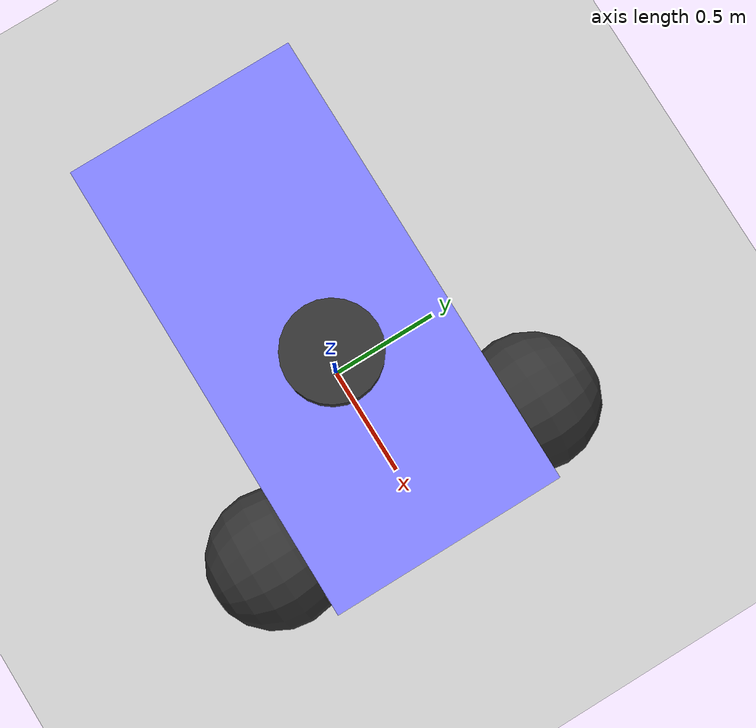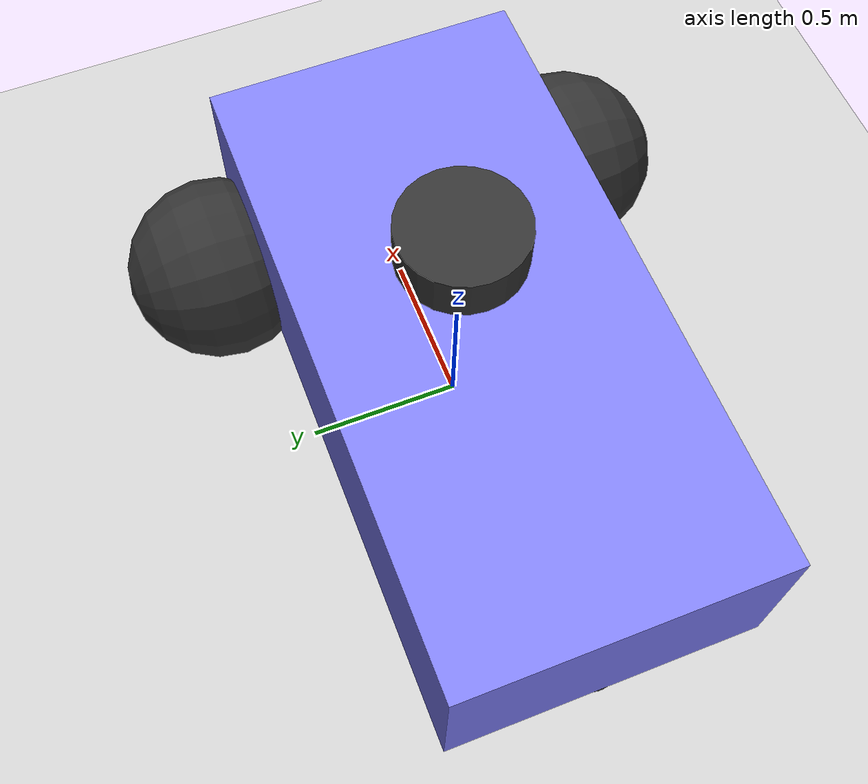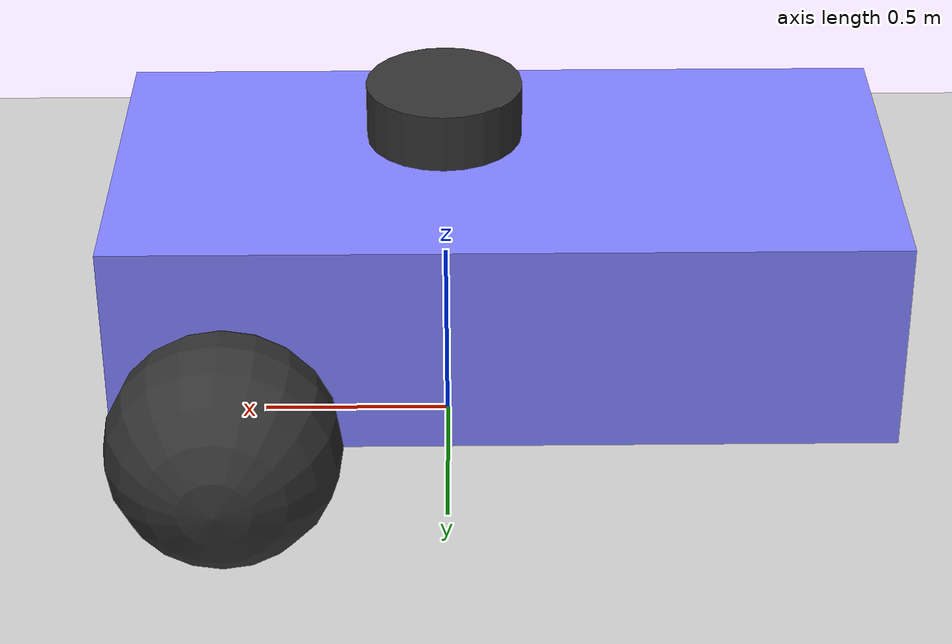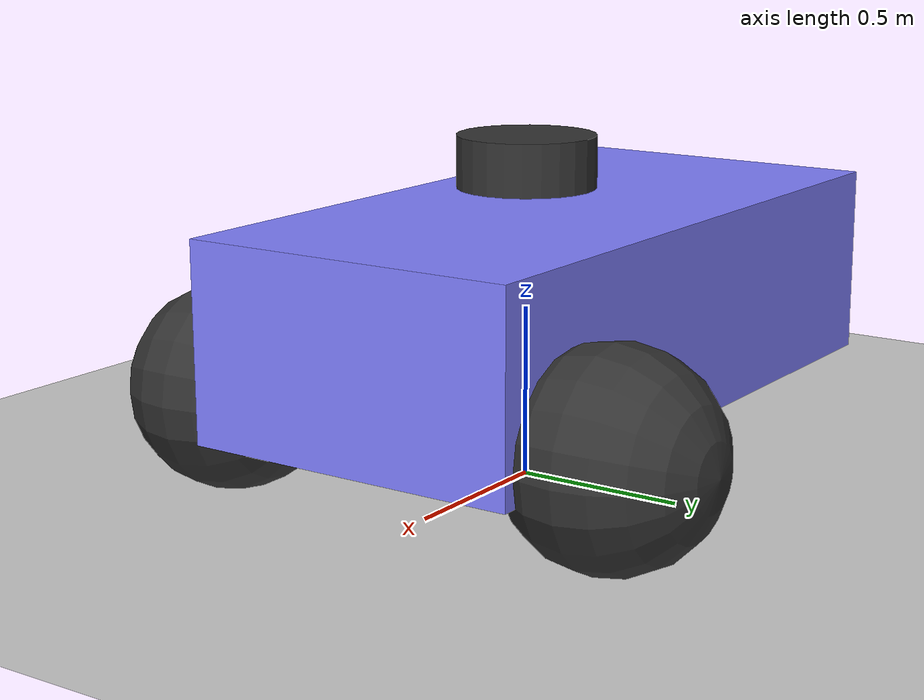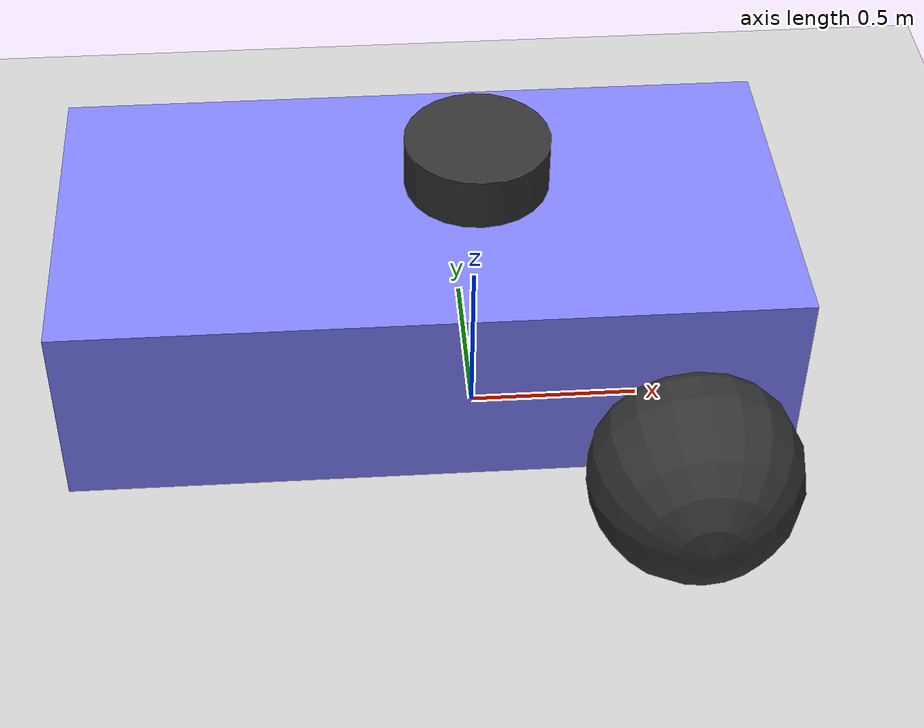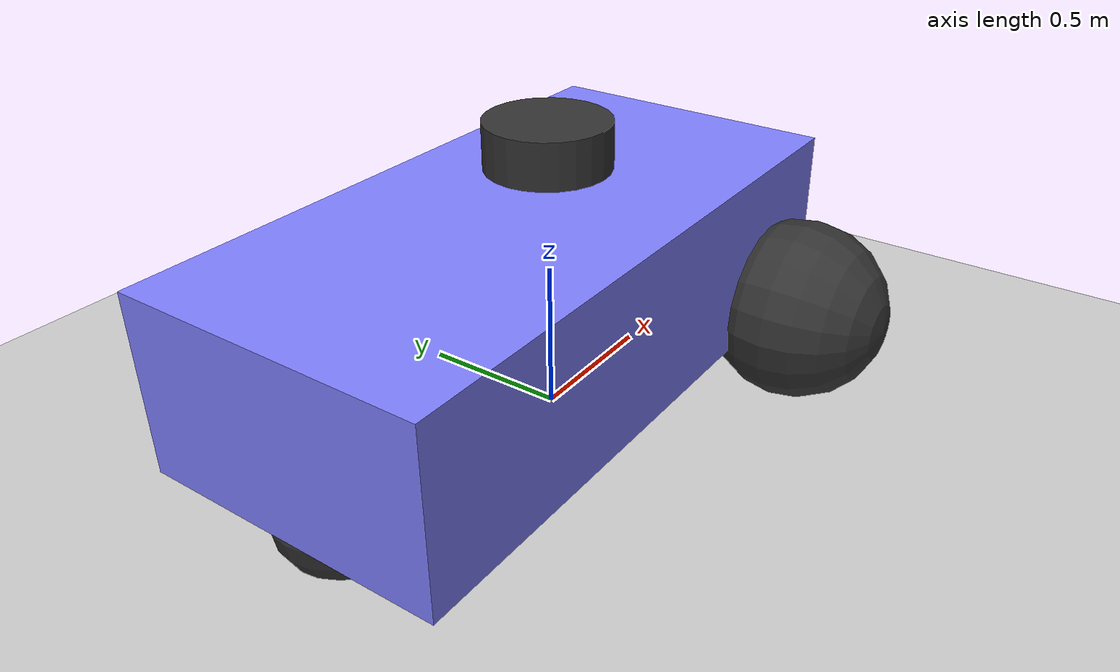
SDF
<?xml version="1.0" ?>
<sdf version="1.6">
  <world name="diff_drive">

    <physics name="1ms" type="ignored">
      <max_step_size>0.001</max_step_size>
      <real_time_factor>1.0</real_time_factor>
    </physics>
    <plugin
      filename="gz-sim-physics-system"
      name="gz::sim::systems::Physics">
    </plugin>
    <plugin
      filename="gz-sim-user-commands-system"
      name="gz::sim::systems::UserCommands">
    </plugin>
    <plugin
      filename="gz-sim-scene-broadcaster-system"
      name="gz::sim::systems::SceneBroadcaster">
    </plugin>
    <plugin
      filename="gz-sim-sensors-system"
      name="gz::sim::systems::Sensors">
      <render_engine>ogre2</render_engine>
    </plugin>
    <plugin filename="gz-sim-imu-system"
      name="gz::sim::systems::Imu">
    </plugin>

    <light type="directional" name="sun">
      <cast_shadows>true</cast_shadows>
      <pose>0 0 10 0 0 0</pose>
      <diffuse>1 1 1 1</diffuse>
      <specular>0.5 0.5 0.5 1</specular>
      <attenuation>
        <range>1000</range>
        <constant>0.9</constant>
        <linear>0.01</linear>
        <quadratic>0.001</quadratic>
      </attenuation>
      <direction>-0.5 0.1 -0.9</direction>
    </light>

    <model name="ground_plane">
      <static>true</static>
      <link name="link">
        <collision name="collision">
          <geometry>
            <plane>
              <normal>0 0 1</normal>
              <size>100 100</size>
            </plane>
          </geometry>
        </collision>
        <visual name="visual">
          <geometry>
            <plane>
              <normal>0 0 1</normal>
              <size>100 100</size>
            </plane>
          </geometry>
          <material>
            <ambient>0.8 0.8 0.8 1</ambient>
            <diffuse>0.8 0.8 0.8 1</diffuse>
            <specular>0.8 0.8 0.8 1</specular>
          </material>
        </visual>
      </link>
    </model>

    <model name='diff_bot'>
      <pose>0 0 0.325 0 0 0</pose>

      <link name='chassis'>
        <pose>-0.151427 -0 0.175 0 -0 0</pose>
        <inertial>
          <mass>1.14395</mass>
          <inertia>
            <ixx>0.126164</ixx>
            <ixy>0</ixy>
            <ixz>0</ixz>
            <iyy>0.416519</iyy>
            <iyz>0</iyz>
            <izz>0.481014</izz>
          </inertia>
        </inertial>
        <visual name='visual'>
          <geometry>
            <box>
              <size>2.01142 1 0.568726</size>
            </box>
          </geometry>
          <material>
            <ambient>0.5 0.5 1.0 1</ambient>
            <diffuse>0.5 0.5 1.0 1</diffuse>
            <specular>0.0 0.0 1.0 1</specular>
          </material>
        </visual>
        <collision name='collision'>
          <geometry>
            <box>
              <size>2.01142 1 0.568726</size>
            </box>
          </geometry>
        </collision>
      </link>

      <link name='left_wheel'>
        <pose>0.554283 0.625029 -0.025 -1.5707 0 0</pose>
        <inertial>
          <mass>2</mass>
          <inertia>
            <ixx>0.145833</ixx>
            <ixy>0</ixy>
            <ixz>0</ixz>
            <iyy>0.145833</iyy>
            <iyz>0</iyz>
            <izz>0.125</izz>
          </inertia>
        </inertial>
        <visual name='visual'>
          <geometry>
            <sphere>
              <radius>0.3</radius>
            </sphere>
          </geometry>
          <material>
            <ambient>0.2 0.2 0.2 1</ambient>
            <diffuse>0.2 0.2 0.2 1</diffuse>
            <specular>0.2 0.2 0.2 1</specular>
          </material>
        </visual>
        <collision name='collision'>
          <geometry>
            <sphere>
              <radius>0.3</radius>
            </sphere>
          </geometry>
          <surface>
            <friction>
              <ode>
                <mu>1</mu>
                <mu2>1</mu2>
                <slip1>0</slip1>
                <slip2>0</slip2>
                <fdir1>0 0 1</fdir1>
              </ode>
              <bullet>
                <friction>1</friction>
                <friction2>1</friction2>
                <rolling_friction>0.1</rolling_friction>
              </bullet>
            </friction>
          </surface>
        </collision>
      </link>

      <link name='right_wheel'>
        <pose>0.554282 -0.625029 -0.025 -1.5707 0 0</pose>
        <inertial>
          <mass>2</mass>
          <inertia>
            <ixx>0.145833</ixx>
            <ixy>0</ixy>
            <ixz>0</ixz>
            <iyy>0.145833</iyy>
            <iyz>0</iyz>
            <izz>0.125</izz>
          </inertia>
        </inertial>
        <visual name='visual'>
          <geometry>
            <sphere>
              <radius>0.3</radius>
            </sphere>
          </geometry>
          <material>
            <ambient>0.2 0.2 0.2 1</ambient>
            <diffuse>0.2 0.2 0.2 1</diffuse>
            <specular>0.2 0.2 0.2 1</specular>
          </material>
        </visual>
        <collision name='collision'>
          <geometry>
            <sphere>
              <radius>0.3</radius>
            </sphere>
          </geometry>
          <surface>
            <friction>
              <ode>
                <mu>1</mu>
                <mu2>1</mu2>
                <slip1>0</slip1>
                <slip2>0</slip2>
                <fdir1>0 0 1</fdir1>
              </ode>
              <bullet>
                <friction>1</friction>
                <friction2>1</friction2>
                <rolling_friction>0.1</rolling_friction>
              </bullet>
            </friction>
          </surface>
        </collision>
      </link>

      <link name='caster'>
        <pose>-0.957138 -0 -0.125 0 -0 0</pose>
        <inertial>
          <mass>1</mass>
          <inertia>
            <ixx>0.1</ixx>
            <ixy>0</ixy>
            <ixz>0</ixz>
            <iyy>0.1</iyy>
            <iyz>0</iyz>
            <izz>0.1</izz>
          </inertia>
        </inertial>
        <visual name='visual'>
          <geometry>
            <sphere>
              <radius>0.2</radius>
            </sphere>
          </geometry>
          <material>
            <ambient>0.2 0.2 0.2 1</ambient>
            <diffuse>0.2 0.2 0.2 1</diffuse>
            <specular>0.2 0.2 0.2 1</specular>
          </material>
        </visual>
        <collision name='collision'>
          <geometry>
            <sphere>
              <radius>0.2</radius>
            </sphere>
          </geometry>
        </collision>
      </link>

      <link name='lidar'>
        <pose>0 0 0.6 0 0 0</pose>
        <inertial>
          <mass>1</mass>
          <inertia>
            <ixx>0.1</ixx>
            <ixy>0</ixy>
            <ixz>0</ixz>
            <iyy>0.1</iyy>
            <iyz>0</iyz>
            <izz>0.1</izz>
          </inertia>
        </inertial>
        <visual name='visual'>
          <geometry>
            <cylinder>
              <radius>0.2</radius>
              <length>0.15</length>
            </cylinder>
          </geometry>
          <material>
            <ambient>0.2 0.2 0.2 1</ambient>
            <diffuse>0.2 0.2 0.2 1</diffuse>
            <specular>0.2 0.2 0.2 1</specular>
          </material>
        </visual>
        <collision name='collision'>
          <geometry>
            <cylinder>
              <radius>0.2</radius>
              <length>0.01</length>
            </cylinder>
          </geometry>
        </collision>

        <sensor name='gpu_lidar' type='gpu_lidar'>
          <topic>scan</topic>
          <update_rate>10</update_rate>
          <lidar>
            <scan>
              <horizontal>
                <samples>640</samples>
                <resolution>1</resolution>
                <min_angle>-1.396263</min_angle>
                <max_angle>1.396263</max_angle>
              </horizontal>
              <vertical>
                <samples>16</samples>
                <resolution>1</resolution>
                <min_angle>-0.261799</min_angle>
                <max_angle>0.261799</max_angle>
              </vertical>
            </scan>
            <range>
              <min>0.08</min>
              <max>10.0</max>
              <resolution>1</resolution>
            </range>
          </lidar>
          <alwaysOn>1</alwaysOn>
          <visualize>true</visualize>
        </sensor>

        <sensor name="imu_sensor" type="imu">
          <always_on>1</always_on>
          <update_rate>20</update_rate>
          <visualize>true</visualize>
          <topic>imu</topic>
        </sensor>
      </link>

      <joint name='left_wheel_joint' type='revolute'>
        <parent>chassis</parent>
        <child>left_wheel</child>
        <axis>
          <xyz>0 0 1</xyz>
          <limit>
            <lower>-1.79769e+308</lower>
            <upper>1.79769e+308</upper>
          </limit>
        </axis>
      </joint>

      <joint name='right_wheel_joint' type='revolute'>
        <parent>chassis</parent>
        <child>right_wheel</child>
        <axis>
          <xyz>0 0 1</xyz>
          <limit>
            <lower>-1.79769e+308</lower>
            <upper>1.79769e+308</upper>
          </limit>
        </axis>
      </joint>

      <joint name='caster_wheel' type='ball'>
        <parent>chassis</parent>
        <child>caster</child>
      </joint>

      <joint name='lidar' type='fixed'>
        <parent>chassis</parent>
        <child>lidar</child>
      </joint>

      <plugin
        filename="gz-sim-diff-drive-system"
        name="gz::sim::systems::DiffDrive">
        <left_joint>left_wheel_joint</left_joint>
        <right_joint>right_wheel_joint</right_joint>
        <wheel_separation>1.25</wheel_separation>
        <wheel_radius>0.3</wheel_radius>
        <odom_publish_frequency>1</odom_publish_frequency>
        <max_linear_acceleration>1</max_linear_acceleration>
        <min_linear_acceleration>-1</min_linear_acceleration>
        <max_angular_acceleration>2</max_angular_acceleration>
        <min_angular_acceleration>-2</min_angular_acceleration>
        <max_linear_velocity>1.5</max_linear_velocity>
        <min_linear_velocity>-1.5</min_linear_velocity>
        <max_angular_velocity>1</max_angular_velocity>
        <min_angular_velocity>-1</min_angular_velocity>
      </plugin>

    </model>

  </world>
</sdf>
